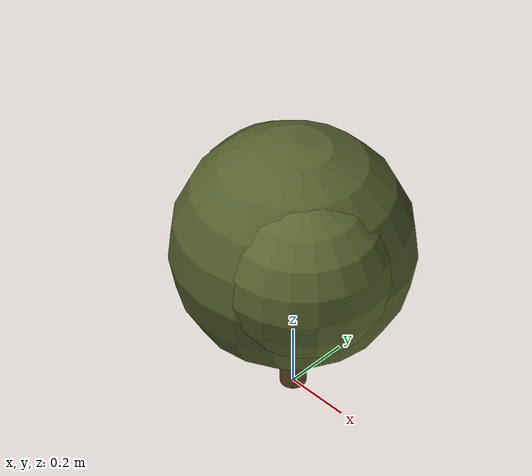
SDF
<?xml version='1.0' encoding='utf-8'?>
<sdf version="1.9">
  <model name="desert_scrub_bush">
    <static>true</static>
    <link name="body">

      <visual name="trunk">
        <cast_shadows>false</cast_shadows>
        <pose>0 0 0.18 0 0 0</pose>
        <geometry>
          <cylinder>
            <radius>0.04</radius>
            <length>0.36</length>
          </cylinder>
        </geometry>
        <material>
          <ambient>0.30 0.22 0.12 1</ambient>
          <diffuse>0.38 0.28 0.15 1</diffuse>
          <specular>0.05 0.04 0.02 1</specular>
        </material>
      </visual>

      <visual name="canopy_0">
        <cast_shadows>false</cast_shadows>
        <pose>0.0 0.0 0.52 0 0 0</pose>
        <geometry>
          <sphere><radius>0.35</radius></sphere>
        </geometry>
        <material>
          <ambient>0.28 0.32 0.14 1</ambient>
          <diffuse>0.34 0.38 0.18 1</diffuse>
          <specular>0.02 0.03 0.01 1</specular>
        </material>
      </visual>

      <visual name="canopy_1">
        <cast_shadows>false</cast_shadows>
        <pose>-0.15 0.10 0.48 0 0 0</pose>
        <geometry>
          <sphere><radius>0.28</radius></sphere>
        </geometry>
        <material>
          <ambient>0.26 0.30 0.13 1</ambient>
          <diffuse>0.32 0.36 0.16 1</diffuse>
          <specular>0.02 0.03 0.01 1</specular>
        </material>
      </visual>

      <visual name="canopy_2">
        <cast_shadows>false</cast_shadows>
        <pose>0.12 -0.08 0.56 0 0 0</pose>
        <geometry>
          <sphere><radius>0.25</radius></sphere>
        </geometry>
        <material>
          <ambient>0.30 0.34 0.15 1</ambient>
          <diffuse>0.36 0.40 0.19 1</diffuse>
          <specular>0.02 0.03 0.01 1</specular>
        </material>
      </visual>

      <collision name="collision">
        <pose>0 0 0.30 0 0 0</pose>
        <geometry>
          <cylinder>
            <radius>0.35</radius>
            <length>0.60</length>
          </cylinder>
        </geometry>
      </collision>
    </link>
  </model>
</sdf>
